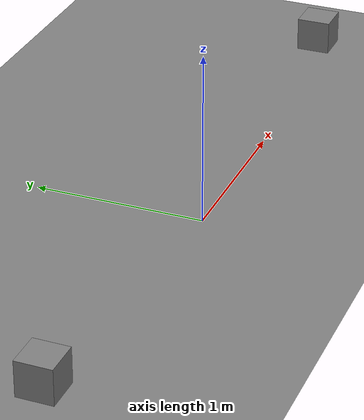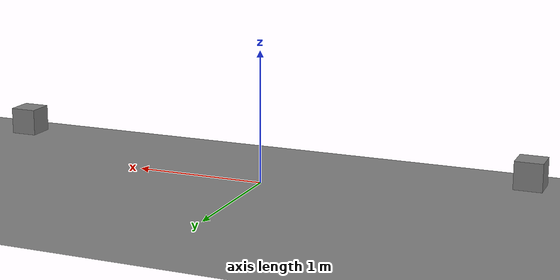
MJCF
<mujoco model="two_isolated">
  <option gravity="0 0 -9.81" timestep="0.002" sleep_tolerance="0.1">
    <flag sleep="enable"/>
  </option>
  <worldbody>
    <geom type="plane" size="5 5 0.1" solref="0.005 1.5"/>
    <body name="A" pos="-2 0 0.3">
      <freejoint/>
      <geom type="box" size="0.1 0.1 0.1" mass="1.0" solref="0.005 1.5"/>
    </body>
    <body name="B" pos="2 0 0.3">
      <freejoint/>
      <geom type="box" size="0.1 0.1 0.1" mass="1.0" solref="0.005 1.5"/>
    </body>
  </worldbody>
</mujoco>
